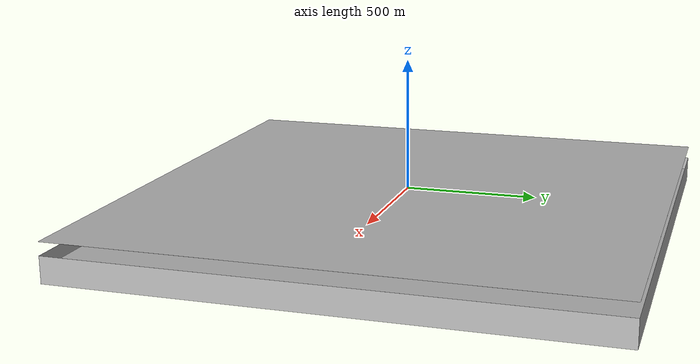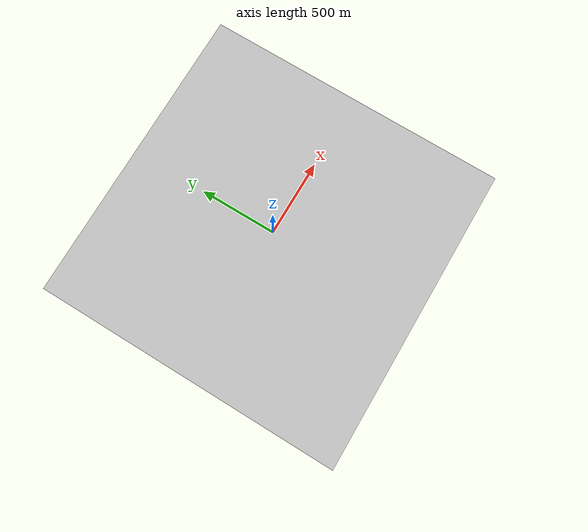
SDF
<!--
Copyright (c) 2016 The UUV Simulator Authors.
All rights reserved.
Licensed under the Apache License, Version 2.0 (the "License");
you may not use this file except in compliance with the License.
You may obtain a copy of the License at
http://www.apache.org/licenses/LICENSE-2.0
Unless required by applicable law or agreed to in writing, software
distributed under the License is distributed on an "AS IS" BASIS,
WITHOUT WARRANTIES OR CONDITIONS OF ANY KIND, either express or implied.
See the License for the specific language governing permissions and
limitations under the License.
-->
<?xml version="1.0" ?>
<sdf version="1.5">
  <world name="empty_underwater">
    <physics name="default_physics" default="true" type="ode">
      <max_step_size>0.002</max_step_size>
      <real_time_factor>1</real_time_factor>
      <real_time_update_rate>500</real_time_update_rate>
      <ode>
        <solver>
          <type>quick</type>
          <iters>50</iters>
          <sor>0.5</sor>
        </solver>
      </ode>
    </physics>
    <scene>
      <ambient>0.01 0.01 0.01 1.0</ambient>
      <sky>
        <clouds>
          <speed>12</speed>
        </clouds>
      </sky>
      <shadows>1</shadows>
      <fog>
        <color>0.1 0.2 0.3 1.0</color>
        <type>linear</type>
        <density>0.001</density>
        <start>10</start>
        <end>200</end>
      </fog>
    </scene>

    <!-- Origin placed somewhere in the middle of the North Sea  -->
    <spherical_coordinates>
      <latitude_deg>56.71897669633431</latitude_deg>
      <longitude_deg>3.515625</longitude_deg>
    </spherical_coordinates>

    <!-- Global light source -->
    <include>
      <uri>model://sun</uri>
    </include>

    <!-- Bounding box with sea surface -->
    <include>
      <uri>model://ocean_box</uri>
      <pose>0 0 0 0 0 0</pose>
    </include>

    <plugin name="underwater_current_plugin" filename="libunderwater_current_ros_plugin.so">
      <namespace>hydrodynamics</namespace>
      <constant_current>
        <topic>current_velocity</topic>
        <velocity>
          <mean>0</mean>
          <min>0</min>
          <max>5</max>
          <mu>0.0</mu>
          <noiseAmp>0.0</noiseAmp>
        </velocity>

        <horizontal_angle>
          <mean>0</mean>
          <min>-3.141592653589793238</min>
          <max>3.141592653589793238</max>
          <mu>0.0</mu>
          <noiseAmp>0.0</noiseAmp>
        </horizontal_angle>

        <vertical_angle>
          <mean>0</mean>
          <min>-3.141592653589793238</min>
          <max>3.141592653589793238</max>
          <mu>0.0</mu>
          <noiseAmp>0.0</noiseAmp>
        </vertical_angle>
      </constant_current>
    </plugin>

    <plugin name="sc_interface" filename="libsc_ros_interface_plugin.so"/>

  </world>
</sdf>

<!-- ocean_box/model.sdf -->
<sdf version="1.5">
  <model name="ocean_box">
    <static>true</static>
    <link name="link">
      <visual name="ground">
        <cast_shadows>false</cast_shadows>
        <pose>0 0 -100 0 0 0</pose>
        <geometry>
          <box>
            <size>2000 2000 .1</size>
          </box>
        </geometry>
        <material>
          <script>
            <uri>file://Media/materials/scripts/sand.material</uri>
            <name>SandAndStones</name>
          </script>
        </material>
      </visual>

      <collision name="ground">
        <pose>0 0 -100 0 0 0</pose>
        <geometry>
          <box>
            <size>2000 2000 .1</size>
          </box>
        </geometry>
      </collision>

      <visual name="surface">
        <cast_shadows>false</cast_shadows>
        <pose>0 0 0 0 0 0</pose>
        <geometry>
          <box>
            <size>2000 2000 .1</size>
          </box>
        </geometry>
        <material>
          <script>
            <uri>file://Media/materials/scripts/water.material</uri>
            <name>StaticDeepWater</name>
          </script>
        </material>
      </visual>

      <visual name="north">
        <cast_shadows>false</cast_shadows>
        <pose>1000 0 -100 0 0 0</pose>
        <geometry>
          <box>
            <size>.1 2000 100</size>
          </box>
        </geometry>
        <material>
          <script>
            <uri>file://Media/materials/scripts/water.material</uri>
            <name>SeaWall</name>
          </script>
        </material>
      </visual>

      <visual name="south">
        <cast_shadows>false</cast_shadows>
        <pose>-1000 0 -100 0 0 0</pose>
        <geometry>
          <box>
            <size>.1 2000 100</size>
          </box>
        </geometry>
        <material>
          <script>
            <uri>file://Media/materials/scripts/water.material</uri>
            <name>SeaWall</name>
          </script>
        </material>
      </visual>

      <visual name="east">
        <cast_shadows>false</cast_shadows>
        <pose>0 -1000 -100 0 0 0</pose>
        <geometry>
          <box>
            <size>2000 .1 100</size>
          </box>
        </geometry>
        <material>
          <script>
            <uri>file://Media/materials/scripts/water.material</uri>
            <name>SeaWall</name>
          </script>
        </material>
      </visual>

      <visual name="west">
        <cast_shadows>false</cast_shadows>
        <pose>0 1000 -100 0 0 0</pose>
        <geometry>
          <box>
            <size>2000 .1 100</size>
          </box>
        </geometry>
        <material>
          <script>
            <uri>file://Media/materials/scripts/water.material</uri>
            <name>SeaWall</name>
          </script>
        </material>
      </visual>
    </link>
  </model>
</sdf>
